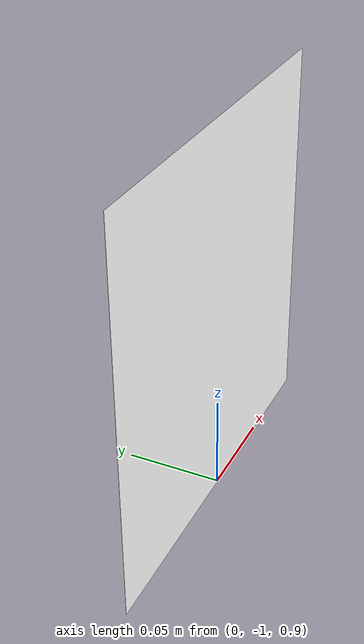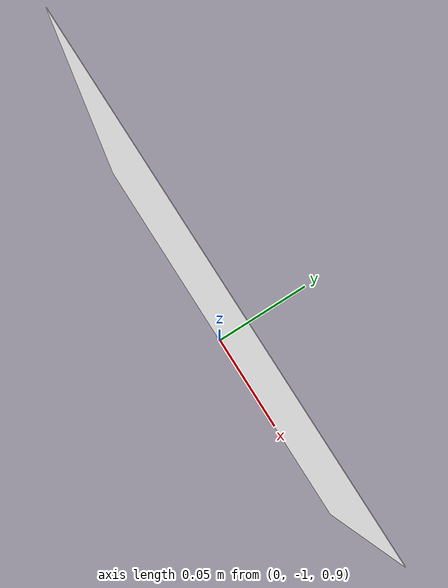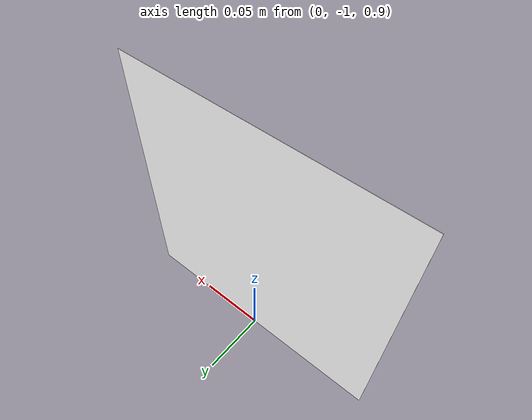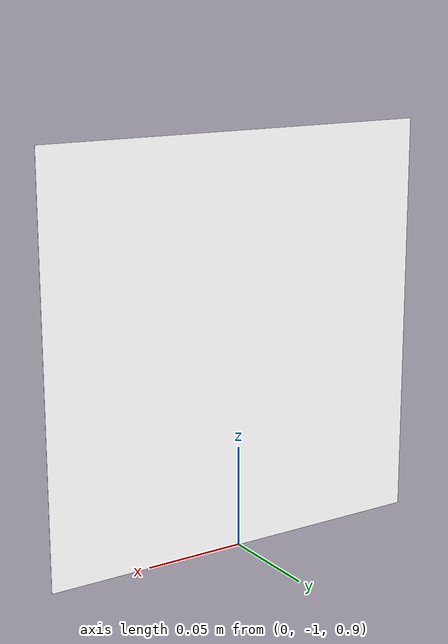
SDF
<?xml version="1.0" ?>
<sdf version="1.4">
  <!-- We use a custom world for the rrbot so that the camera angle is launched correctly -->

  <world name="default">
    <!-- Included light -->
    <include>
      <uri>https://fuel.gazebosim.org/1.0/OpenRobotics/models/Sun</uri>
    </include>

    <!-- Included model -->
    <include>
      <uri>https://fuel.gazebosim.org/1.0/OpenRobotics/models/Ground Plane</uri>
    </include>

    <include>
      <uri>
        model://arucotag
      </uri>
      <name>arucotag</name>
      <pose>-0 -1 1 -1.57 3.1416 0</pose>
    </include>

    <gravity>0 0 -9.81</gravity>

    <!-- Focus camera on tall pendulum -->
    <gui fullscreen='0'>
      <camera name='user_camera'>
        <pose>4.927360 -4.376610 3.740080 0.000000 0.275643 2.356190</pose>
        <view_controller>orbit</view_controller>
      </camera>
    </gui>

    <!-- World control -->

  </world>
</sdf>

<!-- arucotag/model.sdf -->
<sdf version="1.9">
  <model name="arucotag">
    <static>true</static>
    <link name="aruco_link">
      <collision name="collision">
        <geometry><box><size>0.20 0.001 0.20</size></box></geometry>
      </collision>

      <visual name="visual">
        <geometry>
          <plane>
            <normal>0 0 1</normal>
            <size>0.20 0.20</size>
          </plane>
        </geometry>

        <double_sided>1</double_sided>
        <cast_shadows>false</cast_shadows>

        <material>
          <ambient>1 1 1 1</ambient>
          <diffuse>1 1 1 1</diffuse>
          <pbr>
            <metal>
              <albedo_map>model://arucotag/aruco-655.png</albedo_map>
              <roughness>0.3</roughness>
              <metalness>0.0</metalness>
            </metal>
          </pbr>
        </material>
      </visual>
    </link>
  </model>
</sdf>
